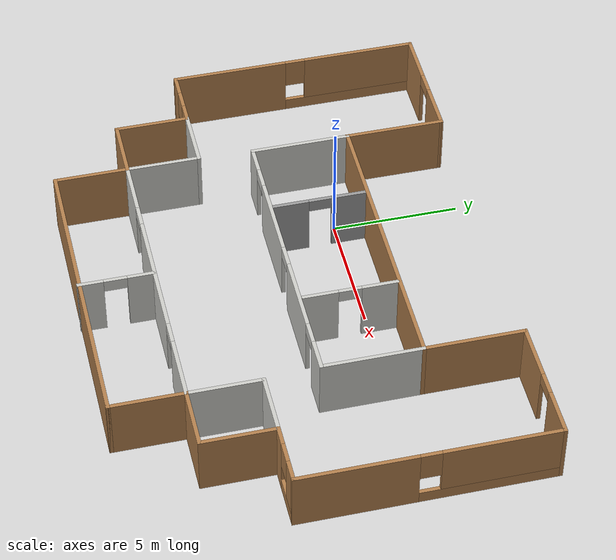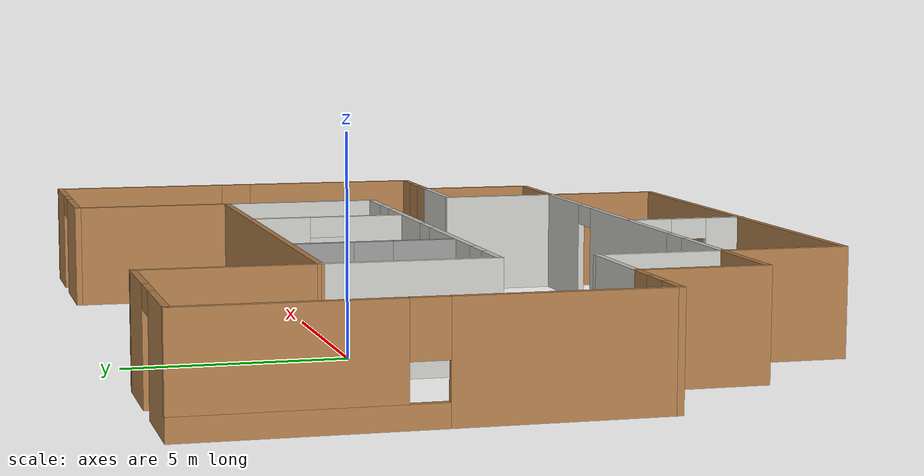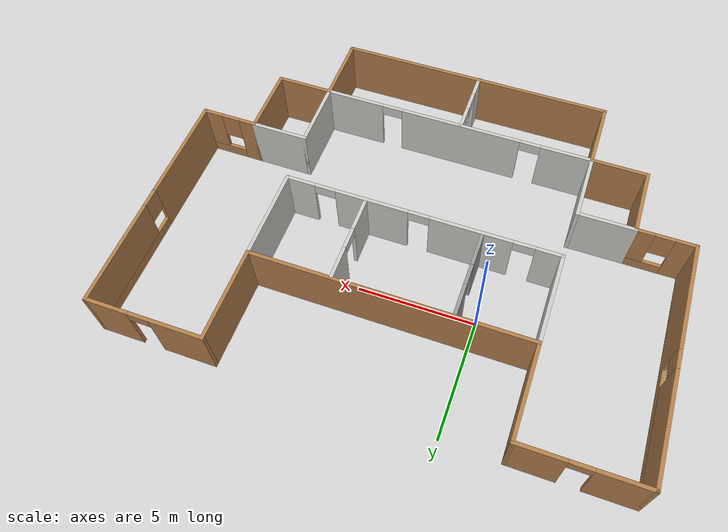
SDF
<?xml version='1.0'?>
<sdf version='1.6'>
  <model name='DemoOffice'>
    <pose frame=''>3.27039 -2.80675 0 0 -0 0</pose>
    <link name='Wall_17'>
      <pose frame=''>-9.45 -2.05802 0 0 -0 0</pose>
      <visual name='Wall_17_Visual_0'>
        <pose frame=''>-0.813982 0 1.25 0 -0 0</pose>
        <geometry>
          <box>
            <size>0.912264 0.15 2.5</size>
          </box>
        </geometry>
        <material>
          <script>
            <uri>file://media/materials/scripts/gazebo.material</uri>
            <name>Gazebo/Wood</name>
          </script>
          <ambient>1 1 1 1</ambient>
        </material>
        <meta>
          <layer>0</layer>
        </meta>
      </visual>
      <collision name='Wall_17_Collision_0'>
        <geometry>
          <box>
            <size>0.912264 0.15 2.5</size>
          </box>
        </geometry>
        <pose frame=''>-0.813982 0 1.25 0 -0 0</pose>
      </collision>
      <visual name='Wall_17_Visual_1'>
        <pose frame=''>0.456132 0 0.25 0 -0 0</pose>
        <geometry>
          <box>
            <size>1.62796 0.15 0.5</size>
          </box>
        </geometry>
        <material>
          <script>
            <uri>file://media/materials/scripts/gazebo.material</uri>
            <name>Gazebo/Wood</name>
          </script>
          <ambient>1 1 1 1</ambient>
        </material>
        <meta>
          <layer>0</layer>
        </meta>
      </visual>
      <collision name='Wall_17_Collision_1'>
        <geometry>
          <box>
            <size>1.62796 0.15 0.5</size>
          </box>
        </geometry>
        <pose frame=''>0.456132 0 0.25 0 -0 0</pose>
      </collision>
      <visual name='Wall_17_Visual_2'>
        <pose frame=''>0.856132 0 1.5 0 -0 0</pose>
        <geometry>
          <box>
            <size>0.827964 0.15 2</size>
          </box>
        </geometry>
        <material>
          <script>
            <uri>file://media/materials/scripts/gazebo.material</uri>
            <name>Gazebo/Wood</name>
          </script>
          <ambient>1 1 1 1</ambient>
        </material>
        <meta>
          <layer>0</layer>
        </meta>
      </visual>
      <collision name='Wall_17_Collision_2'>
        <geometry>
          <box>
            <size>0.827964 0.15 2</size>
          </box>
        </geometry>
        <pose frame=''>0.856132 0 1.5 0 -0 0</pose>
      </collision>
      <visual name='Wall_17_Visual_3'>
        <pose frame=''>0.04215 0 1.9 0 -0 0</pose>
        <geometry>
          <box>
            <size>0.8 0.15 1.2</size>
          </box>
        </geometry>
        <material>
          <script>
            <uri>file://media/materials/scripts/gazebo.material</uri>
            <name>Gazebo/Wood</name>
          </script>
          <ambient>1 1 1 1</ambient>
        </material>
        <meta>
          <layer>0</layer>
        </meta>
      </visual>
      <collision name='Wall_17_Collision_3'>
        <geometry>
          <box>
            <size>0.8 0.15 1.2</size>
          </box>
        </geometry>
        <pose frame=''>0.04215 0 1.9 0 -0 0</pose>
      </collision>
    </link>
    <link name='Wall_18'>
      <collision name='Wall_18_Collision'>
        <geometry>
          <box>
            <size>3 0.15 2.5</size>
          </box>
        </geometry>
        <pose frame=''>0 0 1.25 0 -0 0</pose>
      </collision>
      <visual name='Wall_18_Visual'>
        <pose frame=''>0 0 1.25 0 -0 0</pose>
        <geometry>
          <box>
            <size>3 0.15 2.5</size>
          </box>
        </geometry>
        <material>
          <script>
            <uri>file://media/materials/scripts/gazebo.material</uri>
            <name>Gazebo/Wood</name>
          </script>
          <ambient>1 1 1 1</ambient>
        </material>
        <meta>
          <layer>0</layer>
        </meta>
      </visual>
      <pose frame=''>-8.25489 -3.48302 0 0 0 -1.5708</pose>
    </link>
    <link name='Wall_19'>
      <collision name='Wall_19_Collision'>
        <geometry>
          <box>
            <size>2.5 0.15 2.5</size>
          </box>
        </geometry>
        <pose frame=''>0 0 1.25 0 -0 0</pose>
      </collision>
      <visual name='Wall_19_Visual'>
        <pose frame=''>0 0 1.25 0 -0 0</pose>
        <geometry>
          <box>
            <size>2.5 0.15 2.5</size>
          </box>
        </geometry>
        <material>
          <script>
            <uri>file://media/materials/scripts/gazebo.material</uri>
            <name>Gazebo/Wood</name>
          </script>
          <ambient>1 1 1 1</ambient>
        </material>
        <meta>
          <layer>0</layer>
        </meta>
      </visual>
      <pose frame=''>-7.07989 -4.90802 0 0 -0 0</pose>
    </link>
    <link name='Wall_20'>
      <collision name='Wall_20_Collision'>
        <geometry>
          <box>
            <size>3 0.15 2.5</size>
          </box>
        </geometry>
        <pose frame=''>0 0 1.25 0 -0 0</pose>
      </collision>
      <visual name='Wall_20_Visual'>
        <pose frame=''>0 0 1.25 0 -0 0</pose>
        <geometry>
          <box>
            <size>3 0.15 2.5</size>
          </box>
        </geometry>
        <material>
          <script>
            <uri>file://media/materials/scripts/gazebo.material</uri>
            <name>Gazebo/Wood</name>
          </script>
          <ambient>1 1 1 1</ambient>
        </material>
        <meta>
          <layer>0</layer>
        </meta>
      </visual>
      <pose frame=''>-5.90489 -6.33302 0 0 0 -1.5708</pose>
    </link>
    <link name='Wall_21'>
      <collision name='Wall_21_Collision'>
        <geometry>
          <box>
            <size>12 0.15 2.5</size>
          </box>
        </geometry>
        <pose frame=''>0 0 1.25 0 -0 0</pose>
      </collision>
      <visual name='Wall_21_Visual'>
        <pose frame=''>0 0 1.25 0 -0 0</pose>
        <geometry>
          <box>
            <size>12 0.15 2.5</size>
          </box>
        </geometry>
        <material>
          <script>
            <uri>file://media/materials/scripts/gazebo.material</uri>
            <name>Gazebo/Wood</name>
          </script>
          <ambient>1 1 1 1</ambient>
        </material>
        <meta>
          <layer>0</layer>
        </meta>
      </visual>
      <pose frame=''>0.020114 -7.75802 0 0 -0 0</pose>
    </link>
    <link name='Wall_22'>
      <collision name='Wall_22_Collision'>
        <geometry>
          <box>
            <size>3 0.15 2.5</size>
          </box>
        </geometry>
        <pose frame=''>0 0 1.25 0 -0 0</pose>
      </collision>
      <visual name='Wall_22_Visual'>
        <pose frame=''>0 0 1.25 0 -0 0</pose>
        <geometry>
          <box>
            <size>3 0.15 2.5</size>
          </box>
        </geometry>
        <material>
          <script>
            <uri>file://media/materials/scripts/gazebo.material</uri>
            <name>Gazebo/Wood</name>
          </script>
          <ambient>1 1 1 1</ambient>
        </material>
        <meta>
          <layer>0</layer>
        </meta>
      </visual>
      <pose frame=''>5.94511 -6.33302 0 0 -0 1.5708</pose>
    </link>
    <link name='Wall_24'>
      <collision name='Wall_24_Collision'>
        <geometry>
          <box>
            <size>2.5 0.15 2.5</size>
          </box>
        </geometry>
        <pose frame=''>0 0 1.25 0 -0 0</pose>
      </collision>
      <visual name='Wall_24_Visual'>
        <pose frame=''>0 0 1.25 0 -0 0</pose>
        <geometry>
          <box>
            <size>2.5 0.15 2.5</size>
          </box>
        </geometry>
        <material>
          <script>
            <uri>file://media/materials/scripts/gazebo.material</uri>
            <name>Gazebo/Wood</name>
          </script>
          <ambient>1 1 1 1</ambient>
        </material>
        <meta>
          <layer>0</layer>
        </meta>
      </visual>
      <pose frame=''>7.12011 -4.90802 0 0 -0 0</pose>
    </link>
    <link name='Wall_25'>
      <collision name='Wall_25_Collision'>
        <geometry>
          <box>
            <size>3 0.15 2.5</size>
          </box>
        </geometry>
        <pose frame=''>0 0 1.25 0 -0 0</pose>
      </collision>
      <visual name='Wall_25_Visual'>
        <pose frame=''>0 0 1.25 0 -0 0</pose>
        <geometry>
          <box>
            <size>3 0.15 2.5</size>
          </box>
        </geometry>
        <material>
          <script>
            <uri>file://media/materials/scripts/gazebo.material</uri>
            <name>Gazebo/Wood</name>
          </script>
          <ambient>1 1 1 1</ambient>
        </material>
        <meta>
          <layer>0</layer>
        </meta>
      </visual>
      <pose frame=''>8.29511 -3.48302 0 0 -0 1.5708</pose>
    </link>
    <link name='Wall_26'>
      <pose frame=''>9.47011 -2.05802 0 0 -0 0</pose>
      <visual name='Wall_26_Visual_0'>
        <pose frame=''>-0.852924 0 1.25 0 -0 0</pose>
        <geometry>
          <box>
            <size>0.794153 0.15 2.5</size>
          </box>
        </geometry>
        <material>
          <script>
            <uri>file://media/materials/scripts/gazebo.material</uri>
            <name>Gazebo/Wood</name>
          </script>
          <ambient>1 1 1 1</ambient>
        </material>
        <meta>
          <layer>0</layer>
        </meta>
      </visual>
      <collision name='Wall_26_Collision_0'>
        <geometry>
          <box>
            <size>0.794153 0.15 2.5</size>
          </box>
        </geometry>
        <pose frame=''>-0.852924 0 1.25 0 -0 0</pose>
      </collision>
      <visual name='Wall_26_Visual_1'>
        <pose frame=''>0.397076 0 0.25 0 -0 0</pose>
        <geometry>
          <box>
            <size>1.70585 0.15 0.5</size>
          </box>
        </geometry>
        <material>
          <script>
            <uri>file://media/materials/scripts/gazebo.material</uri>
            <name>Gazebo/Wood</name>
          </script>
          <ambient>1 1 1 1</ambient>
        </material>
        <meta>
          <layer>0</layer>
        </meta>
      </visual>
      <collision name='Wall_26_Collision_1'>
        <geometry>
          <box>
            <size>1.70585 0.15 0.5</size>
          </box>
        </geometry>
        <pose frame=''>0.397076 0 0.25 0 -0 0</pose>
      </collision>
      <visual name='Wall_26_Visual_2'>
        <pose frame=''>0.797076 0 1.5 0 -0 0</pose>
        <geometry>
          <box>
            <size>0.905847 0.15 2</size>
          </box>
        </geometry>
        <material>
          <script>
            <uri>file://media/materials/scripts/gazebo.material</uri>
            <name>Gazebo/Wood</name>
          </script>
          <ambient>1 1 1 1</ambient>
        </material>
        <meta>
          <layer>0</layer>
        </meta>
      </visual>
      <collision name='Wall_26_Collision_2'>
        <geometry>
          <box>
            <size>0.905847 0.15 2</size>
          </box>
        </geometry>
        <pose frame=''>0.797076 0 1.5 0 -0 0</pose>
      </collision>
      <visual name='Wall_26_Visual_3'>
        <pose frame=''>-0.055847 0 1.9 0 -0 0</pose>
        <geometry>
          <box>
            <size>0.8 0.15 1.2</size>
          </box>
        </geometry>
        <material>
          <script>
            <uri>file://media/materials/scripts/gazebo.material</uri>
            <name>Gazebo/Wood</name>
          </script>
          <ambient>1 1 1 1</ambient>
        </material>
        <meta>
          <layer>0</layer>
        </meta>
      </visual>
      <collision name='Wall_26_Collision_3'>
        <geometry>
          <box>
            <size>0.8 0.15 1.2</size>
          </box>
        </geometry>
        <pose frame=''>-0.055847 0 1.9 0 -0 0</pose>
      </collision>
    </link>
    <link name='Wall_32'>
      <pose frame=''>10.6451 2.86698 0 0 -0 1.5708</pose>
      <visual name='Wall_32_Visual_0'>
        <pose frame=''>-2.68235 0 1.25 0 -0 0</pose>
        <geometry>
          <box>
            <size>4.63531 0.15 2.5</size>
          </box>
        </geometry>
        <material>
          <script>
            <uri>file://media/materials/scripts/gazebo.material</uri>
            <name>Gazebo/Wood</name>
          </script>
          <ambient>1 1 1 1</ambient>
        </material>
        <meta>
          <layer>0</layer>
        </meta>
      </visual>
      <collision name='Wall_32_Collision_0'>
        <geometry>
          <box>
            <size>4.63531 0.15 2.5</size>
          </box>
        </geometry>
        <pose frame=''>-2.68235 0 1.25 0 -0 0</pose>
      </collision>
      <visual name='Wall_32_Visual_1'>
        <pose frame=''>2.31765 0 0.25 0 -0 0</pose>
        <geometry>
          <box>
            <size>5.36469 0.15 0.5</size>
          </box>
        </geometry>
        <material>
          <script>
            <uri>file://media/materials/scripts/gazebo.material</uri>
            <name>Gazebo/Wood</name>
          </script>
          <ambient>1 1 1 1</ambient>
        </material>
        <meta>
          <layer>0</layer>
        </meta>
      </visual>
      <collision name='Wall_32_Collision_1'>
        <geometry>
          <box>
            <size>5.36469 0.15 0.5</size>
          </box>
        </geometry>
        <pose frame=''>2.31765 0 0.25 0 -0 0</pose>
      </collision>
      <visual name='Wall_32_Visual_2'>
        <pose frame=''>2.71766 0 1.5 0 -0 0</pose>
        <geometry>
          <box>
            <size>4.56469 0.15 2</size>
          </box>
        </geometry>
        <material>
          <script>
            <uri>file://media/materials/scripts/gazebo.material</uri>
            <name>Gazebo/Wood</name>
          </script>
          <ambient>1 1 1 1</ambient>
        </material>
        <meta>
          <layer>0</layer>
        </meta>
      </visual>
      <collision name='Wall_32_Collision_2'>
        <geometry>
          <box>
            <size>4.56469 0.15 2</size>
          </box>
        </geometry>
        <pose frame=''>2.71766 0 1.5 0 -0 0</pose>
      </collision>
      <visual name='Wall_32_Visual_3'>
        <pose frame=''>0.03531 0 1.9 0 -0 0</pose>
        <geometry>
          <box>
            <size>0.8 0.15 1.2</size>
          </box>
        </geometry>
        <material>
          <script>
            <uri>file://media/materials/scripts/gazebo.material</uri>
            <name>Gazebo/Wood</name>
          </script>
          <ambient>1 1 1 1</ambient>
        </material>
        <meta>
          <layer>0</layer>
        </meta>
      </visual>
      <collision name='Wall_32_Collision_3'>
        <geometry>
          <box>
            <size>0.8 0.15 1.2</size>
          </box>
        </geometry>
        <pose frame=''>0.03531 0 1.9 0 -0 0</pose>
      </collision>
    </link>
    <link name='Wall_33'>
      <pose frame=''>8.22011 7.79198 0 0 -0 3.14159</pose>
      <visual name='Wall_33_Visual_0'>
        <pose frame=''>-1.57187 0 1.25 0 -0 0</pose>
        <geometry>
          <box>
            <size>1.85627 0.15 2.5</size>
          </box>
        </geometry>
        <material>
          <script>
            <uri>file://media/materials/scripts/gazebo.material</uri>
            <name>Gazebo/Wood</name>
          </script>
          <ambient>1 1 1 1</ambient>
        </material>
        <meta>
          <layer>0</layer>
        </meta>
      </visual>
      <collision name='Wall_33_Collision_0'>
        <geometry>
          <box>
            <size>1.85627 0.15 2.5</size>
          </box>
        </geometry>
        <pose frame=''>-1.57187 0 1.25 0 -0 0</pose>
      </collision>
      <visual name='Wall_33_Visual_1'>
        <pose frame=''>1.37813 0 1.25 0 -0 0</pose>
        <geometry>
          <box>
            <size>2.24373 0.15 2.5</size>
          </box>
        </geometry>
        <material>
          <script>
            <uri>file://media/materials/scripts/gazebo.material</uri>
            <name>Gazebo/Wood</name>
          </script>
          <ambient>1 1 1 1</ambient>
        </material>
        <meta>
          <layer>0</layer>
        </meta>
      </visual>
      <collision name='Wall_33_Collision_1'>
        <geometry>
          <box>
            <size>2.24373 0.15 2.5</size>
          </box>
        </geometry>
        <pose frame=''>1.37813 0 1.25 0 -0 0</pose>
      </collision>
      <visual name='Wall_33_Visual_2'>
        <pose frame=''>-0.193731 0 2.25 0 -0 0</pose>
        <geometry>
          <box>
            <size>0.9 0.15 0.5</size>
          </box>
        </geometry>
        <material>
          <script>
            <uri>file://media/materials/scripts/gazebo.material</uri>
            <name>Gazebo/Wood</name>
          </script>
          <ambient>1 1 1 1</ambient>
        </material>
        <meta>
          <layer>0</layer>
        </meta>
      </visual>
      <collision name='Wall_33_Collision_2'>
        <geometry>
          <box>
            <size>0.9 0.15 0.5</size>
          </box>
        </geometry>
        <pose frame=''>-0.193731 0 2.25 0 -0 0</pose>
      </collision>
    </link>
    <link name='Wall_34'>
      <collision name='Wall_34_Collision'>
        <geometry>
          <box>
            <size>4 0.15 2.5</size>
          </box>
        </geometry>
        <pose frame=''>0 0 1.25 0 -0 0</pose>
      </collision>
      <visual name='Wall_34_Visual'>
        <pose frame=''>0 0 1.25 0 -0 0</pose>
        <geometry>
          <box>
            <size>4 0.15 2.5</size>
          </box>
        </geometry>
        <material>
          <script>
            <uri>file://media/materials/scripts/gazebo.material</uri>
            <name>Gazebo/Wood</name>
          </script>
          <ambient>1 1 1 1</ambient>
        </material>
        <meta>
          <layer>0</layer>
        </meta>
      </visual>
      <pose frame=''>5.79511 5.86698 0 0 0 -1.5708</pose>
    </link>
    <link name='Wall_36'>
      <pose frame=''>-10.6451 2.86698 0 0 -0 1.5708</pose>
      <visual name='Wall_36_Visual_0'>
        <pose frame=''>-2.68235 0 1.25 0 -0 0</pose>
        <geometry>
          <box>
            <size>4.63531 0.15 2.5</size>
          </box>
        </geometry>
        <material>
          <script>
            <uri>file://media/materials/scripts/gazebo.material</uri>
            <name>Gazebo/Wood</name>
          </script>
          <ambient>1 1 1 1</ambient>
        </material>
        <meta>
          <layer>0</layer>
        </meta>
      </visual>
      <collision name='Wall_36_Collision_0'>
        <geometry>
          <box>
            <size>4.63531 0.15 2.5</size>
          </box>
        </geometry>
        <pose frame=''>-2.68235 0 1.25 0 -0 0</pose>
      </collision>
      <visual name='Wall_36_Visual_1'>
        <pose frame=''>2.31765 0 0.25 0 -0 0</pose>
        <geometry>
          <box>
            <size>5.36469 0.15 0.5</size>
          </box>
        </geometry>
        <material>
          <script>
            <uri>file://media/materials/scripts/gazebo.material</uri>
            <name>Gazebo/Wood</name>
          </script>
          <ambient>1 1 1 1</ambient>
        </material>
        <meta>
          <layer>0</layer>
        </meta>
      </visual>
      <collision name='Wall_36_Collision_1'>
        <geometry>
          <box>
            <size>5.36469 0.15 0.5</size>
          </box>
        </geometry>
        <pose frame=''>2.31765 0 0.25 0 -0 0</pose>
      </collision>
      <visual name='Wall_36_Visual_2'>
        <pose frame=''>2.71766 0 1.5 0 -0 0</pose>
        <geometry>
          <box>
            <size>4.56469 0.15 2</size>
          </box>
        </geometry>
        <material>
          <script>
            <uri>file://media/materials/scripts/gazebo.material</uri>
            <name>Gazebo/Wood</name>
          </script>
          <ambient>1 1 1 1</ambient>
        </material>
        <meta>
          <layer>0</layer>
        </meta>
      </visual>
      <collision name='Wall_36_Collision_2'>
        <geometry>
          <box>
            <size>4.56469 0.15 2</size>
          </box>
        </geometry>
        <pose frame=''>2.71766 0 1.5 0 -0 0</pose>
      </collision>
      <visual name='Wall_36_Visual_3'>
        <pose frame=''>0.03531 0 1.9 0 -0 0</pose>
        <geometry>
          <box>
            <size>0.8 0.15 1.2</size>
          </box>
        </geometry>
        <material>
          <script>
            <uri>file://media/materials/scripts/gazebo.material</uri>
            <name>Gazebo/Wood</name>
          </script>
          <ambient>1 1 1 1</ambient>
        </material>
        <meta>
          <layer>0</layer>
        </meta>
      </visual>
      <collision name='Wall_36_Collision_3'>
        <geometry>
          <box>
            <size>0.8 0.15 1.2</size>
          </box>
        </geometry>
        <pose frame=''>0.03531 0 1.9 0 -0 0</pose>
      </collision>
    </link>
    <link name='Wall_37'>
      <pose frame=''>-8.22011 7.79198 0 0 -0 0</pose>
      <visual name='Wall_37_Visual_0'>
        <pose frame=''>-1.44802 0 1.25 0 -0 0</pose>
        <geometry>
          <box>
            <size>2.10395 0.15 2.5</size>
          </box>
        </geometry>
        <material>
          <script>
            <uri>file://media/materials/scripts/gazebo.material</uri>
            <name>Gazebo/Wood</name>
          </script>
          <ambient>1 1 1 1</ambient>
        </material>
        <meta>
          <layer>0</layer>
        </meta>
      </visual>
      <collision name='Wall_37_Collision_0'>
        <geometry>
          <box>
            <size>2.10395 0.15 2.5</size>
          </box>
        </geometry>
        <pose frame=''>-1.44802 0 1.25 0 -0 0</pose>
      </collision>
      <visual name='Wall_37_Visual_1'>
        <pose frame=''>1.50198 0 1.25 0 -0 0</pose>
        <geometry>
          <box>
            <size>1.99605 0.15 2.5</size>
          </box>
        </geometry>
        <material>
          <script>
            <uri>file://media/materials/scripts/gazebo.material</uri>
            <name>Gazebo/Wood</name>
          </script>
          <ambient>1 1 1 1</ambient>
        </material>
        <meta>
          <layer>0</layer>
        </meta>
      </visual>
      <collision name='Wall_37_Collision_1'>
        <geometry>
          <box>
            <size>1.99605 0.15 2.5</size>
          </box>
        </geometry>
        <pose frame=''>1.50198 0 1.25 0 -0 0</pose>
      </collision>
      <visual name='Wall_37_Visual_2'>
        <pose frame=''>0.053954 0 2.25 0 -0 0</pose>
        <geometry>
          <box>
            <size>0.9 0.15 0.5</size>
          </box>
        </geometry>
        <material>
          <script>
            <uri>file://media/materials/scripts/gazebo.material</uri>
            <name>Gazebo/Wood</name>
          </script>
          <ambient>1 1 1 1</ambient>
        </material>
        <meta>
          <layer>0</layer>
        </meta>
      </visual>
      <collision name='Wall_37_Collision_2'>
        <geometry>
          <box>
            <size>0.9 0.15 0.5</size>
          </box>
        </geometry>
        <pose frame=''>0.053954 0 2.25 0 -0 0</pose>
      </collision>
    </link>
    <link name='Wall_45'>
      <collision name='Wall_45_Collision'>
        <geometry>
          <box>
            <size>11.75 0.15 2.5</size>
          </box>
        </geometry>
        <pose frame=''>0 0 1.25 0 -0 0</pose>
      </collision>
      <visual name='Wall_45_Visual'>
        <pose frame=''>0 0 1.25 0 -0 0</pose>
        <geometry>
          <box>
            <size>11.75 0.15 2.5</size>
          </box>
        </geometry>
        <material>
          <script>
            <uri>file://media/materials/scripts/gazebo.material</uri>
            <name>Gazebo/Wood</name>
          </script>
          <ambient>1 1 1 1</ambient>
        </material>
        <meta>
          <layer>0</layer>
        </meta>
      </visual>
      <pose frame=''>-0.004886 3.94198 0 0 -0 3.14159</pose>
    </link>
    <link name='Wall_47'>
      <collision name='Wall_47_Collision'>
        <geometry>
          <box>
            <size>4.00001 0.15 2.5</size>
          </box>
        </geometry>
        <pose frame=''>0 0 1.25 0 -0 0</pose>
      </collision>
      <visual name='Wall_47_Visual'>
        <pose frame=''>0 0 1.25 0 -0 0</pose>
        <geometry>
          <box>
            <size>4.00001 0.15 2.5</size>
          </box>
        </geometry>
        <material>
          <script>
            <uri>file://media/materials/scripts/gazebo.material</uri>
            <name>Gazebo/Wood</name>
          </script>
          <ambient>1 1 1 1</ambient>
        </material>
        <meta>
          <layer>0</layer>
        </meta>
      </visual>
      <pose frame=''>-5.8 5.86698 0 0 0 -1.57333</pose>
    </link>
    <link name='Wall_49'>
      <collision name='Wall_49_Collision'>
        <geometry>
          <box>
            <size>4 0.15 2.5</size>
          </box>
        </geometry>
        <pose frame=''>0 0 1.25 0 -0 0</pose>
      </collision>
      <visual name='Wall_49_Visual'>
        <pose frame=''>0 0 1.25 0 -0 0</pose>
        <geometry>
          <box>
            <size>4 0.15 2.5</size>
          </box>
        </geometry>
        <material>
          <script>
            <uri>file://media/materials/scripts/gazebo.material</uri>
            <name>Gazebo/CeilingTiled</name>
          </script>
          <ambient>0.333333 1 0 1</ambient>
        </material>
        <meta>
          <layer>0</layer>
        </meta>
      </visual>
      <pose frame=''>-5.80489 2.01698 0 0 0 -1.5708</pose>
    </link>
    <link name='Wall_50'>
      <pose frame=''>-0.004886 0.091977 0 0 -0 0</pose>
      <visual name='Wall_50_Visual_0'>
        <pose frame=''>-5.29109 0 1.25 0 -0 0</pose>
        <geometry>
          <box>
            <size>1.16782 0.15 2.5</size>
          </box>
        </geometry>
        <material>
          <script>
            <uri>file://media/materials/scripts/gazebo.material</uri>
            <name>Gazebo/CeilingTiled</name>
          </script>
          <ambient>1 1 1 1</ambient>
        </material>
        <meta>
          <layer>0</layer>
        </meta>
      </visual>
      <collision name='Wall_50_Collision_0'>
        <geometry>
          <box>
            <size>1.16782 0.15 2.5</size>
          </box>
        </geometry>
        <pose frame=''>-5.29109 0 1.25 0 -0 0</pose>
      </collision>
      <visual name='Wall_50_Visual_1'>
        <pose frame=''>-2.08452 0 1.25 0 -0 0</pose>
        <geometry>
          <box>
            <size>3.44532 0.15 2.5</size>
          </box>
        </geometry>
        <material>
          <script>
            <uri>file://media/materials/scripts/gazebo.material</uri>
            <name>Gazebo/CeilingTiled</name>
          </script>
          <ambient>1 1 1 1</ambient>
        </material>
        <meta>
          <layer>0</layer>
        </meta>
      </visual>
      <collision name='Wall_50_Collision_1'>
        <geometry>
          <box>
            <size>3.44532 0.15 2.5</size>
          </box>
        </geometry>
        <pose frame=''>-2.08452 0 1.25 0 -0 0</pose>
      </collision>
      <visual name='Wall_50_Visual_2'>
        <pose frame=''>2.10071 0 1.25 0 -0 0</pose>
        <geometry>
          <box>
            <size>3.12514 0.15 2.5</size>
          </box>
        </geometry>
        <material>
          <script>
            <uri>file://media/materials/scripts/gazebo.material</uri>
            <name>Gazebo/CeilingTiled</name>
          </script>
          <ambient>1 1 1 1</ambient>
        </material>
        <meta>
          <layer>0</layer>
        </meta>
      </visual>
      <collision name='Wall_50_Collision_2'>
        <geometry>
          <box>
            <size>3.12514 0.15 2.5</size>
          </box>
        </geometry>
        <pose frame=''>2.10071 0 1.25 0 -0 0</pose>
      </collision>
      <visual name='Wall_50_Visual_3'>
        <pose frame=''>5.21914 0 1.25 0 -0 0</pose>
        <geometry>
          <box>
            <size>1.31172 0.15 2.5</size>
          </box>
        </geometry>
        <material>
          <script>
            <uri>file://media/materials/scripts/gazebo.material</uri>
            <name>Gazebo/CeilingTiled</name>
          </script>
          <ambient>1 1 1 1</ambient>
        </material>
        <meta>
          <layer>0</layer>
        </meta>
      </visual>
      <collision name='Wall_50_Collision_3'>
        <geometry>
          <box>
            <size>1.31172 0.15 2.5</size>
          </box>
        </geometry>
        <pose frame=''>5.21914 0 1.25 0 -0 0</pose>
      </collision>
      <visual name='Wall_50_Visual_4'>
        <pose frame=''>-4.25718 0 2.25 0 -0 0</pose>
        <geometry>
          <box>
            <size>0.9 0.15 0.5</size>
          </box>
        </geometry>
        <material>
          <script>
            <uri>file://media/materials/scripts/gazebo.material</uri>
            <name>Gazebo/CeilingTiled</name>
          </script>
          <ambient>1 1 1 1</ambient>
        </material>
        <meta>
          <layer>0</layer>
        </meta>
      </visual>
      <collision name='Wall_50_Collision_4'>
        <geometry>
          <box>
            <size>0.9 0.15 0.5</size>
          </box>
        </geometry>
        <pose frame=''>-4.25718 0 2.25 0 -0 0</pose>
      </collision>
      <visual name='Wall_50_Visual_5'>
        <pose frame=''>0.08814 0 2.25 0 -0 0</pose>
        <geometry>
          <box>
            <size>0.9 0.15 0.5</size>
          </box>
        </geometry>
        <material>
          <script>
            <uri>file://media/materials/scripts/gazebo.material</uri>
            <name>Gazebo/CeilingTiled</name>
          </script>
          <ambient>1 1 1 1</ambient>
        </material>
        <meta>
          <layer>0</layer>
        </meta>
      </visual>
      <collision name='Wall_50_Collision_5'>
        <geometry>
          <box>
            <size>0.9 0.15 0.5</size>
          </box>
        </geometry>
        <pose frame=''>0.08814 0 2.25 0 -0 0</pose>
      </collision>
      <visual name='Wall_50_Visual_6'>
        <pose frame=''>4.11328 0 2.25 0 -0 0</pose>
        <geometry>
          <box>
            <size>0.9 0.15 0.5</size>
          </box>
        </geometry>
        <material>
          <script>
            <uri>file://media/materials/scripts/gazebo.material</uri>
            <name>Gazebo/CeilingTiled</name>
          </script>
          <ambient>1 1 1 1</ambient>
        </material>
        <meta>
          <layer>0</layer>
        </meta>
      </visual>
      <collision name='Wall_50_Collision_6'>
        <geometry>
          <box>
            <size>0.9 0.15 0.5</size>
          </box>
        </geometry>
        <pose frame=''>4.11328 0 2.25 0 -0 0</pose>
      </collision>
    </link>
    <link name='Wall_51'>
      <collision name='Wall_51_Collision'>
        <geometry>
          <box>
            <size>4 0.15 2.5</size>
          </box>
        </geometry>
        <pose frame=''>0 0 1.25 0 -0 0</pose>
      </collision>
      <visual name='Wall_51_Visual'>
        <pose frame=''>0 0 1.25 0 -0 0</pose>
        <geometry>
          <box>
            <size>4 0.15 2.5</size>
          </box>
        </geometry>
        <material>
          <script>
            <uri>file://media/materials/scripts/gazebo.material</uri>
            <name>Gazebo/CeilingTiled</name>
          </script>
          <ambient>0.333333 1 0 1</ambient>
        </material>
        <meta>
          <layer>0</layer>
        </meta>
      </visual>
      <pose frame=''>5.79511 2.01698 0 0 -0 1.5708</pose>
    </link>
    <link name='Wall_54'>
      <pose frame=''>-2.57706 2.02779 0 0 0 -1.5708</pose>
      <visual name='Wall_54_Visual_0'>
        <pose frame=''>-1.17665 0 1.25 0 -0 0</pose>
        <geometry>
          <box>
            <size>1.3967 0.15 2.5</size>
          </box>
        </geometry>
        <material>
          <script>
            <uri>file://media/materials/scripts/gazebo.material</uri>
            <name>Gazebo/Grey</name>
          </script>
          <ambient>1 1 1 1</ambient>
        </material>
        <meta>
          <layer>0</layer>
        </meta>
      </visual>
      <collision name='Wall_54_Collision_0'>
        <geometry>
          <box>
            <size>1.3967 0.15 2.5</size>
          </box>
        </geometry>
        <pose frame=''>-1.17665 0 1.25 0 -0 0</pose>
      </collision>
      <visual name='Wall_54_Visual_1'>
        <pose frame=''>1.14835 0 1.25 0 -0 0</pose>
        <geometry>
          <box>
            <size>1.4533 0.15 2.5</size>
          </box>
        </geometry>
        <material>
          <script>
            <uri>file://media/materials/scripts/gazebo.material</uri>
            <name>Gazebo/Grey</name>
          </script>
          <ambient>1 1 1 1</ambient>
        </material>
        <meta>
          <layer>0</layer>
        </meta>
      </visual>
      <collision name='Wall_54_Collision_1'>
        <geometry>
          <box>
            <size>1.4533 0.15 2.5</size>
          </box>
        </geometry>
        <pose frame=''>1.14835 0 1.25 0 -0 0</pose>
      </collision>
      <visual name='Wall_54_Visual_2'>
        <pose frame=''>-0.028297 0 2.25 0 -0 0</pose>
        <geometry>
          <box>
            <size>0.9 0.15 0.5</size>
          </box>
        </geometry>
        <material>
          <script>
            <uri>file://media/materials/scripts/gazebo.material</uri>
            <name>Gazebo/Grey</name>
          </script>
          <ambient>1 1 1 1</ambient>
        </material>
        <meta>
          <layer>0</layer>
        </meta>
      </visual>
      <collision name='Wall_54_Collision_2'>
        <geometry>
          <box>
            <size>0.9 0.15 0.5</size>
          </box>
        </geometry>
        <pose frame=''>-0.028297 0 2.25 0 -0 0</pose>
      </collision>
    </link>
    <link name='Wall_59'>
      <pose frame=''>2.33065 2.04791 0 0 0 -1.5708</pose>
      <visual name='Wall_59_Visual_0'>
        <pose frame=''>-1.15516 0 1.25 0 -0 0</pose>
        <geometry>
          <box>
            <size>1.43969 0.15 2.5</size>
          </box>
        </geometry>
        <material>
          <script>
            <uri>file://media/materials/scripts/gazebo.material</uri>
            <name>Gazebo/CeilingTiled</name>
          </script>
          <ambient>1 1 1 1</ambient>
        </material>
        <meta>
          <layer>0</layer>
        </meta>
      </visual>
      <collision name='Wall_59_Collision_0'>
        <geometry>
          <box>
            <size>1.43969 0.15 2.5</size>
          </box>
        </geometry>
        <pose frame=''>-1.15516 0 1.25 0 -0 0</pose>
      </collision>
      <visual name='Wall_59_Visual_1'>
        <pose frame=''>1.16984 0 1.25 0 -0 0</pose>
        <geometry>
          <box>
            <size>1.41031 0.15 2.5</size>
          </box>
        </geometry>
        <material>
          <script>
            <uri>file://media/materials/scripts/gazebo.material</uri>
            <name>Gazebo/CeilingTiled</name>
          </script>
          <ambient>1 1 1 1</ambient>
        </material>
        <meta>
          <layer>0</layer>
        </meta>
      </visual>
      <collision name='Wall_59_Collision_1'>
        <geometry>
          <box>
            <size>1.41031 0.15 2.5</size>
          </box>
        </geometry>
        <pose frame=''>1.16984 0 1.25 0 -0 0</pose>
      </collision>
      <visual name='Wall_59_Visual_2'>
        <pose frame=''>0.014687 0 2.25 0 -0 0</pose>
        <geometry>
          <box>
            <size>0.9 0.15 0.5</size>
          </box>
        </geometry>
        <material>
          <script>
            <uri>file://media/materials/scripts/gazebo.material</uri>
            <name>Gazebo/CeilingTiled</name>
          </script>
          <ambient>1 1 1 1</ambient>
        </material>
        <meta>
          <layer>0</layer>
        </meta>
      </visual>
      <collision name='Wall_59_Collision_2'>
        <geometry>
          <box>
            <size>0.9 0.15 0.5</size>
          </box>
        </geometry>
        <pose frame=''>0.014687 0 2.25 0 -0 0</pose>
      </collision>
    </link>
    <link name='Wall_61'>
      <pose frame=''>0.020114 -4.90802 0 0 -0 0</pose>
      <visual name='Wall_61_Visual_0'>
        <pose frame=''>-4.86295 0 1.25 0 -0 0</pose>
        <geometry>
          <box>
            <size>2.2741 0.15 2.5</size>
          </box>
        </geometry>
        <material>
          <script>
            <uri>file://media/materials/scripts/gazebo.material</uri>
            <name>Gazebo/CeilingTiled</name>
          </script>
          <ambient>0.666667 0 0 1</ambient>
        </material>
        <meta>
          <layer>0</layer>
        </meta>
      </visual>
      <collision name='Wall_61_Collision_0'>
        <geometry>
          <box>
            <size>2.2741 0.15 2.5</size>
          </box>
        </geometry>
        <pose frame=''>-4.86295 0 1.25 0 -0 0</pose>
      </collision>
      <visual name='Wall_61_Visual_1'>
        <pose frame=''>-0.176996 0 1.25 0 -0 0</pose>
        <geometry>
          <box>
            <size>5.29781 0.15 2.5</size>
          </box>
        </geometry>
        <material>
          <script>
            <uri>file://media/materials/scripts/gazebo.material</uri>
            <name>Gazebo/CeilingTiled</name>
          </script>
          <ambient>0.666667 0 0 1</ambient>
        </material>
        <meta>
          <layer>0</layer>
        </meta>
      </visual>
      <collision name='Wall_61_Collision_1'>
        <geometry>
          <box>
            <size>5.29781 0.15 2.5</size>
          </box>
        </geometry>
        <pose frame=''>-0.176996 0 1.25 0 -0 0</pose>
      </collision>
      <visual name='Wall_61_Visual_2'>
        <pose frame=''>4.68595 0 1.25 0 -0 0</pose>
        <geometry>
          <box>
            <size>2.62809 0.15 2.5</size>
          </box>
        </geometry>
        <material>
          <script>
            <uri>file://media/materials/scripts/gazebo.material</uri>
            <name>Gazebo/CeilingTiled</name>
          </script>
          <ambient>0.666667 0 0 1</ambient>
        </material>
        <meta>
          <layer>0</layer>
        </meta>
      </visual>
      <collision name='Wall_61_Collision_2'>
        <geometry>
          <box>
            <size>2.62809 0.15 2.5</size>
          </box>
        </geometry>
        <pose frame=''>4.68595 0 1.25 0 -0 0</pose>
      </collision>
      <visual name='Wall_61_Visual_3'>
        <pose frame=''>-3.2759 0 2.25 0 -0 0</pose>
        <geometry>
          <box>
            <size>0.9 0.15 0.5</size>
          </box>
        </geometry>
        <material>
          <script>
            <uri>file://media/materials/scripts/gazebo.material</uri>
            <name>Gazebo/CeilingTiled</name>
          </script>
          <ambient>0.666667 0 0 1</ambient>
        </material>
        <meta>
          <layer>0</layer>
        </meta>
      </visual>
      <collision name='Wall_61_Collision_3'>
        <geometry>
          <box>
            <size>0.9 0.15 0.5</size>
          </box>
        </geometry>
        <pose frame=''>-3.2759 0 2.25 0 -0 0</pose>
      </collision>
      <visual name='Wall_61_Visual_4'>
        <pose frame=''>2.92191 0 2.25 0 -0 0</pose>
        <geometry>
          <box>
            <size>0.9 0.15 0.5</size>
          </box>
        </geometry>
        <material>
          <script>
            <uri>file://media/materials/scripts/gazebo.material</uri>
            <name>Gazebo/CeilingTiled</name>
          </script>
          <ambient>0.666667 0 0 1</ambient>
        </material>
        <meta>
          <layer>0</layer>
        </meta>
      </visual>
      <collision name='Wall_61_Collision_4'>
        <geometry>
          <box>
            <size>0.9 0.15 0.5</size>
          </box>
        </geometry>
        <pose frame=''>2.92191 0 2.25 0 -0 0</pose>
      </collision>
    </link>
    <link name='Wall_64'>
      <collision name='Wall_64_Collision'>
        <geometry>
          <box>
            <size>3 0.15 2.5</size>
          </box>
        </geometry>
        <pose frame=''>0 0 1.25 0 -0 0</pose>
      </collision>
      <visual name='Wall_64_Visual'>
        <pose frame=''>0 0 1.25 0 -0 0</pose>
        <geometry>
          <box>
            <size>3 0.15 2.5</size>
          </box>
        </geometry>
        <material>
          <script>
            <uri>file://media/materials/scripts/gazebo.material</uri>
            <name>Gazebo/CeilingTiled</name>
          </script>
          <ambient>0.666667 0 0 1</ambient>
        </material>
        <meta>
          <layer>0</layer>
        </meta>
      </visual>
      <pose frame=''>-5.90489 -3.48302 0 0 -0 1.5708</pose>
    </link>
    <link name='Wall_65'>
      <collision name='Wall_65_Collision'>
        <geometry>
          <box>
            <size>2.5 0.15 2.5</size>
          </box>
        </geometry>
        <pose frame=''>0 0 1.25 0 -0 0</pose>
      </collision>
      <visual name='Wall_65_Visual'>
        <pose frame=''>0 0 1.25 0 -0 0</pose>
        <geometry>
          <box>
            <size>2.5 0.15 2.5</size>
          </box>
        </geometry>
        <material>
          <script>
            <uri>file://media/materials/scripts/gazebo.material</uri>
            <name>Gazebo/CeilingTiled</name>
          </script>
          <ambient>0.666667 0 0 1</ambient>
        </material>
        <meta>
          <layer>0</layer>
        </meta>
      </visual>
      <pose frame=''>-7.07989 -2.05802 0 0 -0 3.14159</pose>
    </link>
    <link name='Wall_67'>
      <collision name='Wall_67_Collision'>
        <geometry>
          <box>
            <size>3 0.15 2.5</size>
          </box>
        </geometry>
        <pose frame=''>0 0 1.25 0 -0 0</pose>
      </collision>
      <visual name='Wall_67_Visual'>
        <pose frame=''>0 0 1.25 0 -0 0</pose>
        <geometry>
          <box>
            <size>3 0.15 2.5</size>
          </box>
        </geometry>
        <material>
          <script>
            <uri>file://media/materials/scripts/gazebo.material</uri>
            <name>Gazebo/CeilingTiled</name>
          </script>
          <ambient>1 1 1 1</ambient>
        </material>
        <meta>
          <layer>0</layer>
        </meta>
      </visual>
      <pose frame=''>5.94511 -3.48302 0 0 -0 1.5708</pose>
    </link>
    <link name='Wall_68'>
      <collision name='Wall_68_Collision'>
        <geometry>
          <box>
            <size>2.5 0.15 2.5</size>
          </box>
        </geometry>
        <pose frame=''>0 0 1.25 0 -0 0</pose>
      </collision>
      <visual name='Wall_68_Visual'>
        <pose frame=''>0 0 1.25 0 -0 0</pose>
        <geometry>
          <box>
            <size>2.5 0.15 2.5</size>
          </box>
        </geometry>
        <material>
          <script>
            <uri>file://media/materials/scripts/gazebo.material</uri>
            <name>Gazebo/CeilingTiled</name>
          </script>
          <ambient>0.666667 0 0 1</ambient>
        </material>
        <meta>
          <layer>0</layer>
        </meta>
      </visual>
      <pose frame=''>7.12011 -2.05802 0 0 -0 0</pose>
    </link>
    <link name='Wall_81'>
      <pose frame=''>-0.168317 -6.36717 0 0 0 -1.5708</pose>
      <visual name='Wall_81_Visual_0'>
        <pose frame=''>-0.955656 0 1.25 0 -0 0</pose>
        <geometry>
          <box>
            <size>1.08869 0.15 2.5</size>
          </box>
        </geometry>
        <material>
          <script>
            <uri>file://media/materials/scripts/gazebo.material</uri>
            <name>Gazebo/CeilingTiled</name>
          </script>
          <ambient>0.333333 1 0 1</ambient>
        </material>
        <meta>
          <layer>0</layer>
        </meta>
      </visual>
      <collision name='Wall_81_Collision_0'>
        <geometry>
          <box>
            <size>1.08869 0.15 2.5</size>
          </box>
        </geometry>
        <pose frame=''>-0.955656 0 1.25 0 -0 0</pose>
      </collision>
      <visual name='Wall_81_Visual_1'>
        <pose frame=''>0.994344 0 1.25 0 -0 0</pose>
        <geometry>
          <box>
            <size>1.01131 0.15 2.5</size>
          </box>
        </geometry>
        <material>
          <script>
            <uri>file://media/materials/scripts/gazebo.material</uri>
            <name>Gazebo/CeilingTiled</name>
          </script>
          <ambient>0.333333 1 0 1</ambient>
        </material>
        <meta>
          <layer>0</layer>
        </meta>
      </visual>
      <collision name='Wall_81_Collision_1'>
        <geometry>
          <box>
            <size>1.01131 0.15 2.5</size>
          </box>
        </geometry>
        <pose frame=''>0.994344 0 1.25 0 -0 0</pose>
      </collision>
      <visual name='Wall_81_Visual_2'>
        <pose frame=''>0.038689 0 2.25 0 -0 0</pose>
        <geometry>
          <box>
            <size>0.9 0.15 0.5</size>
          </box>
        </geometry>
        <material>
          <script>
            <uri>file://media/materials/scripts/gazebo.material</uri>
            <name>Gazebo/CeilingTiled</name>
          </script>
          <ambient>0.333333 1 0 1</ambient>
        </material>
        <meta>
          <layer>0</layer>
        </meta>
      </visual>
      <collision name='Wall_81_Collision_2'>
        <geometry>
          <box>
            <size>0.9 0.15 0.5</size>
          </box>
        </geometry>
        <pose frame=''>0.038689 0 2.25 0 -0 0</pose>
      </collision>
    </link>
    <static>1</static>
  </model>
</sdf>
